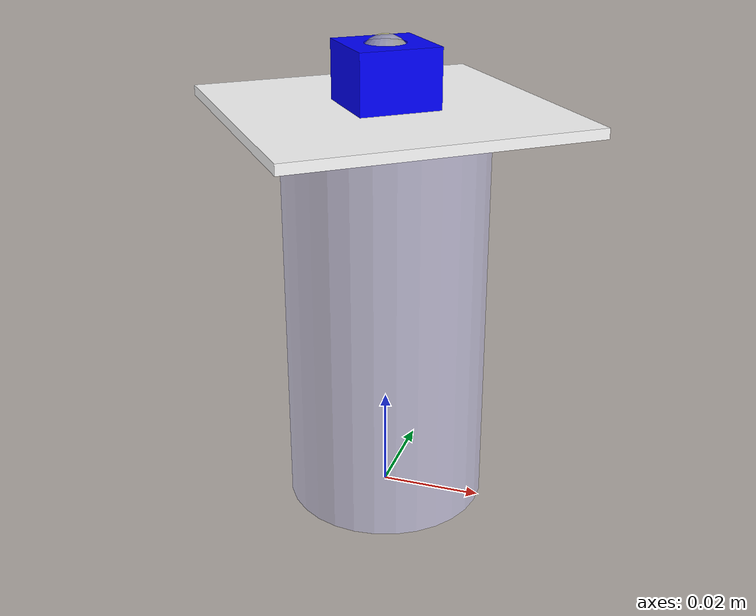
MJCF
<mujoco model="flower_final">
    <compiler angle="radian" meshdir="meshes"/>

    <asset>
        <mesh name="bottle_mesh" file="bottle_link.STL"/>
        <mesh name="plate_mesh" file="plate_Link.STL"/>
        <mesh name="lego_mesh" file="lego_Link.STL"/>

        <material name="mat_bottle" rgba="0.8 0.8 1 0.5"/>
        <material name="mat_plate" rgba="1 1 1 1"/>
        <material name="mat_lego" rgba="0 0 1 1"/>

        <!-- 花蜜材质（淡黄色、透明度 0.6） -->
        <material name="mat_nectar" rgba="1 1 0.6 0.6"/>
    </asset>

    <worldbody>

        <!-- 底部瓶 body -->
        <body name="flower_base" pos="0 0 0">
            <geom type="mesh" mesh="bottle_mesh" material="mat_bottle"/>

            <!-- 托盘 -->
            <body name="flower_plate" pos="0 0 0.079">
                <geom type="mesh" mesh="plate_mesh" material="mat_plate"/>

                <!-- 积木 -->
                <body name="flower_lego" pos="0 0 0">
                    <geom type="mesh" mesh="lego_mesh" material="mat_lego"/>

                    <!-- 花蜜碰撞区（有颜色、轻透明） -->
                    <geom name="nectar_collision"
                          type="sphere"
                          pos="0 0 0.01"
                          size="0.005"
                          material="mat_nectar"
                          contype="1"
                          conaffinity="1"/>
                </body>
            </body>
        </body>

    </worldbody>
</mujoco>
